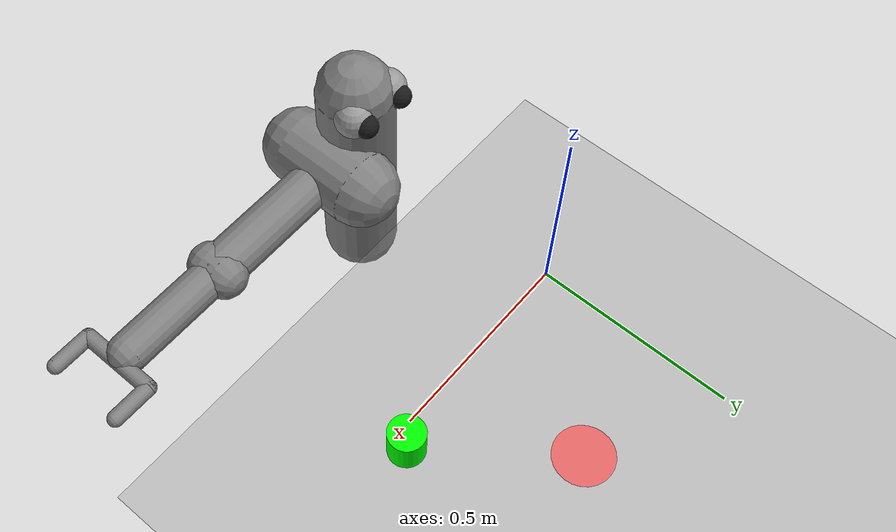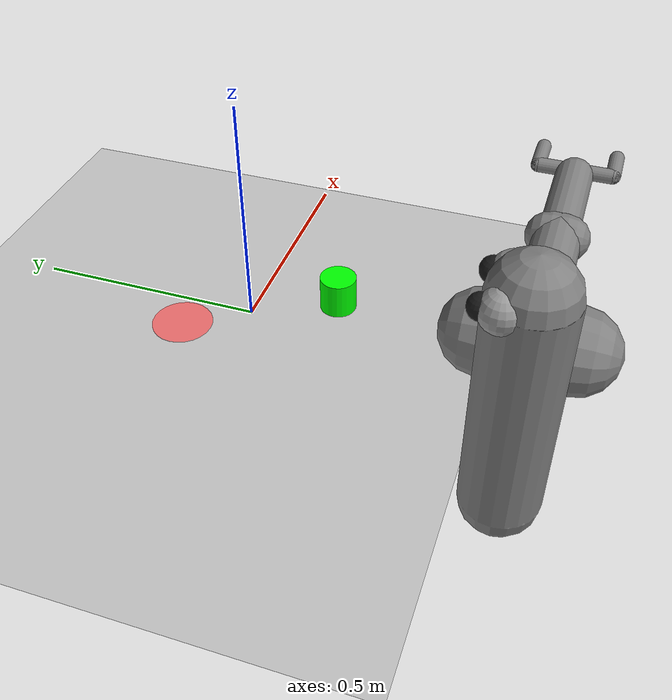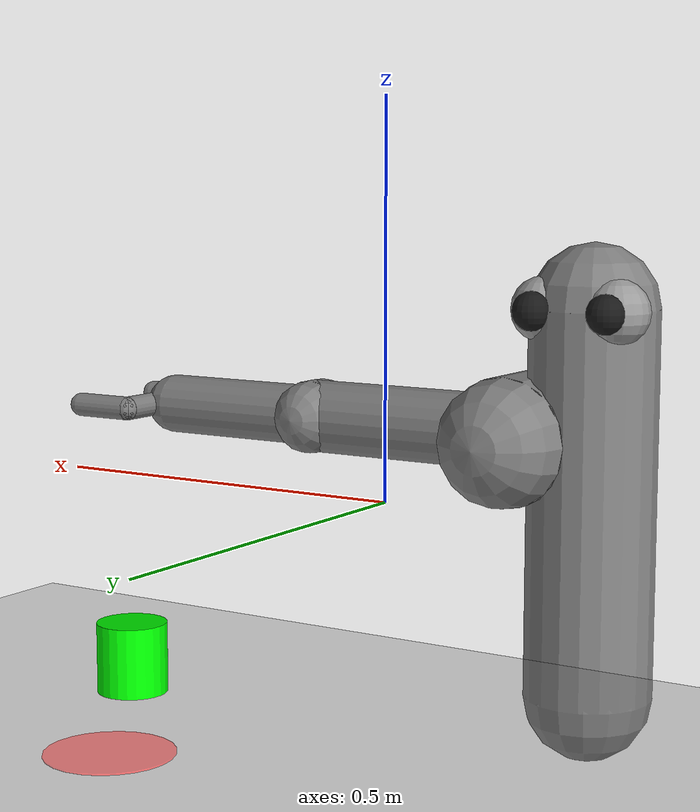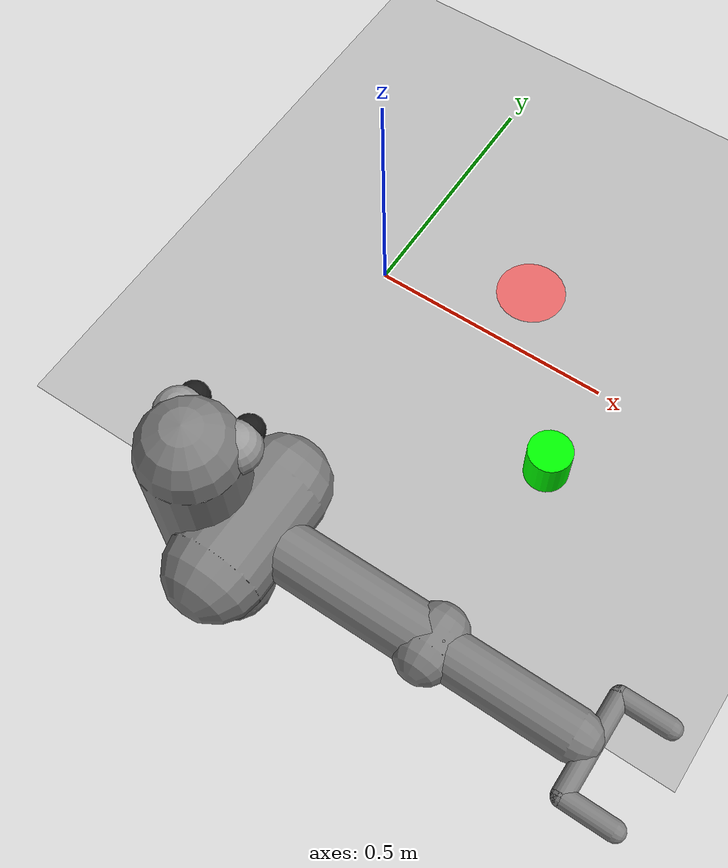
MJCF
<mujoco model="arm3d">
  <compiler inertiafromgeom="true" angle="radian" coordinate="local"/>
  <option timestep="0.01" gravity="0 0 -9.81" iterations="50" integrator="RK4" />

  <default>
    <joint armature='0.04' damping="1" limited="true"/>
    <!-- Enable collisions for all geoms by default -->
    <geom friction="1.0 0.1 0.1" density="300" margin="0.001" condim="3" contype="1" conaffinity="1"/>
  </default>

  <worldbody>
    <light diffuse=".5 .5 .5" pos="0 0 3" dir="0 0 -1"/>
    <geom name="table" type="plane" pos="0 0.5 -0.325" size="1 1 0.1" contype="1" conaffinity="1"/>

    <body name="r_shoulder_pan_link" pos="0 -0.6 0">
      <!-- Shoulder visual elements - no collision needed -->
      <geom name="e1" type="sphere" rgba="0.6 0.6 0.6 1" pos="-0.06 0.05 0.2" size="0.05" contype="0" conaffinity="0"/>
      <geom name="e2" type="sphere" rgba="0.6 0.6 0.6 1" pos=" 0.06 0.05 0.2" size="0.05" contype="0" conaffinity="0"/>
      <geom name="e1p" type="sphere" rgba="0.1 0.1 0.1 1" pos="-0.06 0.09 0.2" size="0.03" contype="0" conaffinity="0"/>
      <geom name="e2p" type="sphere" rgba="0.1 0.1 0.1 1" pos=" 0.06 0.09 0.2" size="0.03" contype="0" conaffinity="0"/>

      <!-- Shoulder link - enable collision with specific collision group -->
      <geom name="sp" type="capsule" fromto="0 0 -0.4 0 0 0.2" size="0.1" contype="2" conaffinity="1"/>
      <joint name="r_shoulder_pan_joint" type="hinge" pos="0 0 0" axis="0 0 1" range="-2.2854 1.714602" damping="1.0" />

      <body name="r_shoulder_lift_link" pos="0.1 0 0">
        <geom name="sl" type="capsule" fromto="0 -0.1 0 0 0.1 0" size="0.1" contype="2" conaffinity="1"/>
        <joint name="r_shoulder_lift_joint" type="hinge" pos="0 0 0" axis="0 1 0" range="-0.5236 1.3963" damping="1.0" />

        <body name="r_upper_arm_roll_link" pos="0 0 0">
          <geom name="uar" type="capsule" fromto="-0.1 0 0 0.1 0 0" size="0.02" contype="2" conaffinity="1"/>
          <joint name="r_upper_arm_roll_joint" type="hinge" pos="0 0 0" axis="1 0 0" range="-1.5 1.7" damping="0.1" />

          <body name="r_upper_arm_link" pos="0 0 0">
            <geom name="ua" type="capsule" fromto="0 0 0 0.4 0 0" size="0.06" contype="2" conaffinity="1"/>

            <body name="r_elbow_flex_link" pos="0.4 0 0">
              <geom name="ef" type="capsule" fromto="0 -0.02 0 0.0 0.02 0" size="0.06" contype="2" conaffinity="1"/>
              <joint name="r_elbow_flex_joint" type="hinge" pos="0 0 0" axis="0 1 0" range="-2.3213 0" damping="0.1" />

              <body name="r_forearm_roll_link" pos="0 0 0">
                <geom name="fr" type="capsule" fromto="-0.1 0 0 0.1 0 0" size="0.02" contype="2" conaffinity="1"/>
                <joint name="r_forearm_roll_joint" type="hinge" limited="true" pos="0 0 0" axis="1 0 0" damping=".1" range="-1.5 1.5"/>

                <body name="r_forearm_link" pos="0 0 0">
                  <geom name="fa" type="capsule" fromto="0 0 0 0.291 0 0" size="0.05" contype="2" conaffinity="1"/>

                  <body name="r_wrist_flex_link" pos="0.321 0 0">
                    <geom name="wf" type="capsule" fromto="0 -0.02 0 0 0.02 0" size="0.01" contype="2" conaffinity="1"/>
                    <joint name="r_wrist_flex_joint" type="hinge" pos="0 0 0" axis="0 1 0" range="-1.094 0" damping=".1" />

                    <body name="r_wrist_roll_link" pos="0 0 0">
                      <joint name="r_wrist_roll_joint" type="hinge" pos="0 0 0" limited="true" axis="1 0 0" damping="0.1" range="-1.5 1.5"/>

                      <body name="tips_arm" pos="0 0 0">
                        <geom name="tip_arml" type="sphere" pos="0.1 -0.1 0." size="0.01" contype="2" conaffinity="1"/>
                        <geom name="tip_armr" type="sphere" pos="0.1 0.1 0." size="0.01" contype="2" conaffinity="1"/>
                      </body>

                      <!-- End effector collision geometry - CRITICAL for pushing -->
                      <geom name="ee_main" type="capsule" fromto="0 -0.1 0. 0.0 +0.1 0" size="0.02" contype="2" conaffinity="1"/>
                      <geom name="ee_left" type="capsule" fromto="0 -0.1 0. 0.1 -0.1 0" size="0.02" contype="2" conaffinity="1"/>
                      <geom name="ee_right" type="capsule" fromto="0 +0.1 0. 0.1 +0.1 0." size="0.02" contype="2" conaffinity="1"/>
                    </body>
                  </body>
                </body>
              </body>
            </body>
          </body>
        </body>
      </body>
    </body>

    <!-- Object to push - FIXED collision settings -->
    <body name="object" pos="0.45 -0.05 -0.275" >
      <!-- Invisible collision sphere for physics -->
      <geom name="obj_collision" rgba="1 1 1 0" type="sphere" size="0.05" density="100" contype="1" conaffinity="2" friction="0.8 0.1 0.1"/>
      <!-- Visible cylinder for rendering -->
      <geom name="obj_visual" rgba="0 1 0 1" type="cylinder" size="0.05 0.05" density="0.00001" contype="0" conaffinity="0"/>
      <joint name="obj_slidey" type="slide" pos="0 0 0" axis="0 1 0" range="-10.3213 10.3" damping="0.5"/>
      <joint name="obj_slidex" type="slide" pos="0 0 0" axis="1 0 0" range="-10.3213 10.3" damping="0.5"/>
    </body>

    <!-- Goal visualization - positioned differently to create a clear task -->
    <body name="goal" pos="0.2 0.3 -0.275">
      <geom name="goal_visual" rgba="1 0 0 0.5" type="cylinder" size="0.08 0.001" density='0.00001' contype="0" conaffinity="0"/>
      <!-- Static goal - no joints needed -->
    </body>
  </worldbody>

  <actuator>
    <motor joint="r_shoulder_pan_joint" ctrlrange="-2.0 2.0" ctrllimited="true" gear="100"/>
    <motor joint="r_shoulder_lift_joint" ctrlrange="-2.0 2.0" ctrllimited="true" gear="100"/>
    <motor joint="r_upper_arm_roll_joint" ctrlrange="-2.0 2.0" ctrllimited="true" gear="100"/>
    <motor joint="r_elbow_flex_joint" ctrlrange="-2.0 2.0" ctrllimited="true" gear="100"/>
    <motor joint="r_forearm_roll_joint" ctrlrange="-2.0 2.0" ctrllimited="true" gear="50"/>
    <motor joint="r_wrist_flex_joint" ctrlrange="-2.0 2.0" ctrllimited="true" gear="50"/>
    <motor joint="r_wrist_roll_joint" ctrlrange="-2.0 2.0" ctrllimited="true" gear="50"/>
  </actuator>

  <!-- Contact exclusions to prevent self-collision -->
  <contact>
    <exclude body1="r_shoulder_pan_link" body2="r_shoulder_lift_link"/>
    <exclude body1="r_shoulder_lift_link" body2="r_upper_arm_roll_link"/>
    <exclude body1="r_upper_arm_roll_link" body2="r_upper_arm_link"/>
    <exclude body1="r_upper_arm_link" body2="r_elbow_flex_link"/>
    <exclude body1="r_elbow_flex_link" body2="r_forearm_roll_link"/>
    <exclude body1="r_forearm_roll_link" body2="r_forearm_link"/>
    <exclude body1="r_forearm_link" body2="r_wrist_flex_link"/>
    <exclude body1="r_wrist_flex_link" body2="r_wrist_roll_link"/>
  </contact>
</mujoco>
